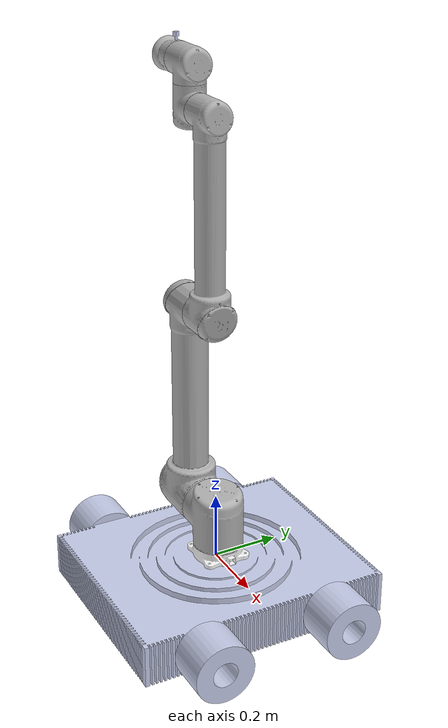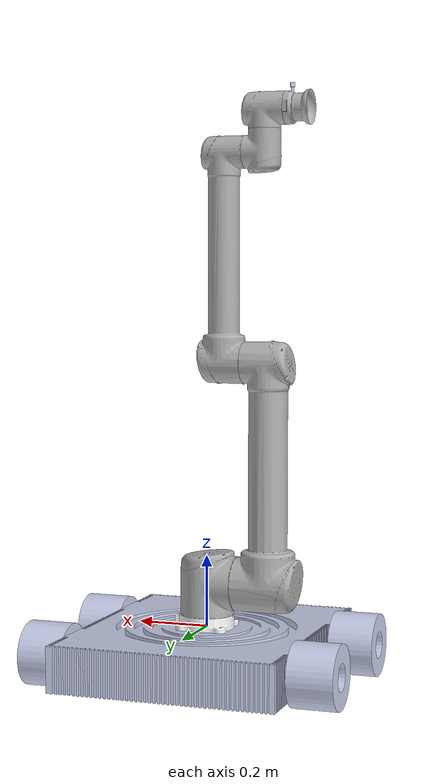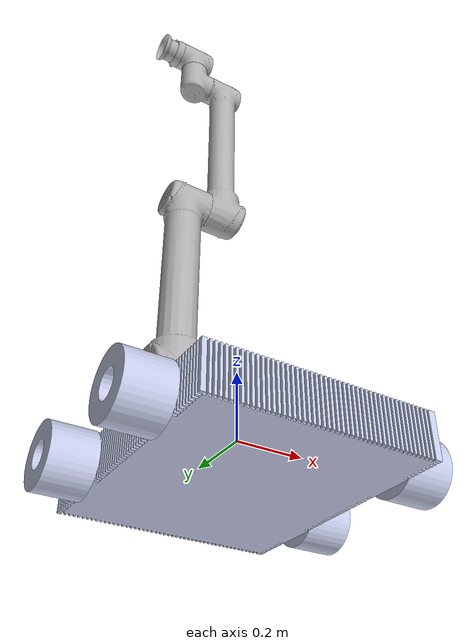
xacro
<?xml version="1.0" encoding="utf-8"?>
<robot
  name="hand_e" xmlns:xacro="http://ros.org/wiki/xacro">

  <!-- Colors -->
  <xacro:macro name="body_color">
    <visual>
    <material>
        <ambient>0.792156862745098 0.819607843137255 0.933333333333333 1</ambient>
        <diffuse>0.8 0.558823529411765 0.1 1</diffuse>
        <specular>0.1 0.1 0.1 1</specular>
        <emissive>0 0 0 0</emissive>
    </material>
    </visual>
  </xacro:macro>
  <xacro:macro name="wheel_color">
    <visual>
    <material>
        <ambient>0 0 0 1</ambient>
        <diffuse>0 0 0 1</diffuse>
        <specular>0.1 0.1 0.1 1</specular>
        <emissive>0 0 0 0</emissive>
    </material>
    </visual>
  </xacro:macro>
  <xacro:macro name="arm_color">
    <visual>
    <material>
        <ambient>0.0 0 0.929411764705882 1</ambient>
        <diffuse>0 0 0 1</diffuse>
        <specular>0.1 0.1 0.1 1</specular>
        <emissive>0 0 0 0</emissive>
    </material>
    </visual>
  </xacro:macro>
  <xacro:macro name="gripper_color">
    <visual>
    <material>
        <ambient>0 1 0 1</ambient>
        <diffuse>0 0 0 1</diffuse>
        <specular>0.1 0.1 0.1 1</specular>
        <emissive>0 0 0 0</emissive>
    </material>
    </visual>
  </xacro:macro>
  <!-- Colors -->

  <link name="dummy_link"></link>
  <joint name="dummy_to_base_link=" type="fixed">
    <parent link="dummy_link"/>
     <child link="base_link"/>
  </joint>

  <link
    name="base_link">
    <inertial>
      <origin
        xyz="5.80276310836428E-05 -6.11295497276811E-05 -0.0648336848302014"
        rpy="0 0 0" />
      <mass
        value="52.6386459244813" />
      <inertia
        ixx="2.60615907779186"
        ixy="-1.86719960169964E-07"
        ixz="-4.07373488104584E-06"
        iyy="1.80507200469152"
        iyz="4.29150001997116E-06"
        izz="4.2630437084624" />
    </inertial>
    <visual>
      <origin
        xyz="0 0 0"
        rpy="0 0 0" />
      <geometry>
        <mesh
          filename="package://hand_e/meshes/base_link.STL" />
      </geometry>
      <material
        name="">
        <color
          rgba="0.792156862745098 0.819607843137255 0.933333333333333 1" />
      </material>
    </visual>
    <collision>
      <origin
        xyz="0 0 0"
        rpy="0 0 0" />
      <geometry>
        <mesh
          filename="package://hand_e/meshes/base_link.STL" />
      </geometry>
    </collision>
  </link>
  <link
    name="front_left">
    <inertial>
      <origin
        xyz="-1.38777878078145E-17 5.55111512312578E-17 5.55111512312578E-17"
        rpy="0 0 0" />
      <mass
        value="2.57407399381529" />
      <inertia
        ixx="0.00947976967355967"
        ixy="-2.00803277362391E-19"
        ixz="5.87902952597009E-20"
        iyy="0.00947976967355967"
        iyz="7.00422786249909E-19"
        izz="0.0120399994394116" />
    </inertial>
    <visual>
      <origin
        xyz="0 0 0"
        rpy="0 0 0" />
      <geometry>
        <mesh
          filename="package://hand_e/meshes/front_left.STL" />
      </geometry>
      <material
        name="">
        <color
          rgba="0.792156862745098 0.819607843137255 0.933333333333333 1" />
      </material>
    </visual>
    <collision>
      <origin
        xyz="0 0 0"
        rpy="0 0 0" />
      <geometry>
        <mesh
          filename="package://hand_e/meshes/front_left.STL" />
      </geometry>
    </collision>
  </link>
  <joint
    name="front_left_joint"
    type="continuous">
    <origin
      xyz="0.380999999999999 -0.203121668505498 -0.0635000000000014"
      rpy="0 1.5707963267949 0" />
    <parent
      link="base_link" />
    <child
      link="front_left" />
    <axis
      xyz="0 0 1" />
    <limit
      effort="100"
      velocity="100" />
    <dynamics
      friction="2" />
    <description>leftJoint</description>
  </joint>
  <link
    name="rear_left">
    <inertial>
      <origin
        xyz="0 -2.77555756156289E-17 0"
        rpy="0 0 0" />
      <mass
        value="2.57407399381529" />
      <inertia
        ixx="0.00947976967355967"
        ixy="7.28360102040024E-22"
        ixz="2.59581749825336E-22"
        iyy="0.00947976967355967"
        iyz="-6.2335073044409E-20"
        izz="0.0120399994394116" />
    </inertial>
    <visual>
      <origin
        xyz="0 0 0"
        rpy="0 0 0" />
      <geometry>
        <mesh
          filename="package://hand_e/meshes/rear_left.STL" />
      </geometry>
      <material
        name="">
        <color
          rgba="0.792156862745098 0.819607843137255 0.933333333333333 1" />
      </material>
    </visual>
    <collision>
      <origin
        xyz="0 0 0"
        rpy="0 0 0" />
      <geometry>
        <mesh
          filename="package://hand_e/meshes/rear_left.STL" />
      </geometry>
    </collision>
  </link>
  <joint
    name="rear_left_joint"
    type="continuous">
    <origin
      xyz="0.380999999999999 0.203308839419647 -0.0635"
      rpy="0 1.5707963267949 0" />
    <parent
      link="base_link" />
    <child
      link="rear_left" />
    <axis
      xyz="0 0 1" />
    <limit
      effort="100"
      velocity="100" />
    <dynamics
      friction="2" />
  </joint>
  <link
    name="front_right">
    <inertial>
      <origin
        xyz="0 0 -5.55111512312578E-17"
        rpy="0 0 0" />
      <mass
        value="2.57407399381529" />
      <inertia
        ixx="0.00947976967355968"
        ixy="2.83276051993413E-19"
        ixz="1.42649221499535E-32"
        iyy="0.00947976967355968"
        iyz="-4.00872542516456E-32"
        izz="0.0120399994394116" />
    </inertial>
    <visual>
      <origin
        xyz="0 0 0"
        rpy="0 0 0" />
      <geometry>
        <mesh
          filename="package://hand_e/meshes/front_right.STL" />
      </geometry>
      <material
        name="">
        <color
          rgba="0.792156862745098 0.819607843137255 0.933333333333333 1" />
      </material>
    </visual>
    <collision>
      <origin
        xyz="0 0 0"
        rpy="0 0 0" />
      <geometry>
        <mesh
          filename="package://hand_e/meshes/front_right.STL" />
      </geometry>
    </collision>
  </link>
  <joint
    name="front_right_joint"
    type="continuous">
    <origin
      xyz="-0.381 -0.203121668505497 -0.0635"
      rpy="3.14159265358979 -1.5707963267949 0" />
    <parent
      link="base_link" />
    <child
      link="front_right" />
    <axis
      xyz="0 0 1" />
    <dynamics
      friction="2" />
    <description>rightJoint</description>
  </joint>
  <link
    name="rear_right">
    <inertial>
      <origin
        xyz="0 2.77555756156289E-17 -5.55111512312578E-17"
        rpy="0 0 0" />
      <mass
        value="2.57407399381529" />
      <inertia
        ixx="0.00947976967355968"
        ixy="3.33476871334018E-19"
        ixz="3.06486896423945E-32"
        iyy="0.00947976967355968"
        iyz="-3.21321069290309E-32"
        izz="0.0120399994394116" />
    </inertial>
    <visual>
      <origin
        xyz="0 0 0"
        rpy="0 0 0" />
      <geometry>
        <mesh
          filename="package://hand_e/meshes/rear_right.STL" />
      </geometry>
      <material
        name="">
        <color
          rgba="0.792156862745098 0.819607843137255 0.933333333333333 1" />
      </material>
    </visual>
    <collision>
      <origin
        xyz="0 0 0"
        rpy="0 0 0" />
      <geometry>
        <mesh
          filename="package://hand_e/meshes/rear_right.STL" />
      </geometry>
    </collision>
  </link>
  <joint
    name="rear_right_joint"
    type="continuous">
    <origin
      xyz="-0.381 0.203308839419645 -0.0635"
      rpy="3.14159265358979 -1.5707963267949 0" />
    <parent
      link="base_link" />
    <child
      link="rear_right" />
    <axis
      xyz="0 0 1" />
    <limit
      effort="100"
      velocity="100" />
    <dynamics
      friction="2" />
  </joint>
  <link
    name="base">
    <inertial>
      <origin
        xyz="0.000468809221648677 7.22487927756407E-06 0.0184342922644863"
        rpy="0 0 0" />
      <mass
        value="0.723083511474943" />
      <inertia
        ixx="0.00116917959377857"
        ixy="-3.75879736012242E-08"
        ixz="-3.04764040502731E-07"
        iyy="0.00119721400625644"
        iyz="8.31308767977868E-08"
        izz="0.00219015492157671" />
    </inertial>
    <visual>
      <origin
        xyz="0 0 0"
        rpy="0 0 0" />
      <geometry>
        <mesh
          filename="package://hand_e/meshes/base.STL" />
      </geometry>
      <material
        name="">
        <color
          rgba="1 1 1 1" />
      </material>
    </visual>
    <collision>
      <origin
        xyz="0 0 0"
        rpy="0 0 0" />
      <geometry>
        <mesh
          filename="package://hand_e/meshes/base.STL" />
      </geometry>
    </collision>
  </link>
  <joint
    name="base_joint"
    type="fixed">
    <origin
      xyz="-0.00595281220058339 0.0110605867213414 0"
      rpy="0 0 0" />
    <parent
      link="base_link" />
    <child
      link="base" />
    <axis
      xyz="0 0 0" />
  </joint>
  <link
    name="base_connect">
    <inertial>
      <origin
        xyz="-0.0116180919174927 1.38467447423872E-06 0.116489279970554"
        rpy="0 0 0" />
      <mass
        value="0.313514079524471" />
      <inertia
        ixx="0.00109341088249656"
        ixy="9.00039257151338E-08"
        ixz="8.76480121568793E-05"
        iyy="0.00117090750291461"
        iyz="6.76857903934236E-09"
        izz="0.00103229346928198" />
    </inertial>
    <visual>
      <origin
        xyz="0 0 0"
        rpy="0 0 0" />
      <geometry>
        <mesh
          filename="package://hand_e/meshes/base_connect.STL" />
      </geometry>
      <material
        name="">
        <color
          rgba="0.698039215686274 0.698039215686274 0.698039215686274 1" />
      </material>
    </visual>
    <collision>
      <origin
        xyz="0 0 0"
        rpy="0 0 0" />
      <geometry>
        <mesh
          filename="package://hand_e/meshes/base_connect.STL" />
      </geometry>
    </collision>
  </link>
  <joint
    name="base_connect_joint"
    type="continuous">
    <origin
      xyz="0 0 0"
      rpy="0 0 0" />
    <parent
      link="base" />
    <child
      link="base_connect" />
    <axis
      xyz="0 0 1" />
  </joint>
  <link
    name="arm1_lower">
    <inertial>
      <origin
        xyz="-0.25096150116301 2.50635946441938E-06 0.0841410933131611"
        rpy="0 0 0" />
      <mass
        value="0.887819204634431" />
      <inertia
        ixx="0.002059497821703"
        ixy="2.40499771631106E-06"
        ixz="0.000425170003573277"
        iyy="0.0463631650483672"
        iyz="-3.14589506399883E-07"
        izz="0.0461700726342757" />
    </inertial>
    <visual>
      <origin
        xyz="0 0 0"
        rpy="0 0 0" />
      <geometry>
        <mesh
          filename="package://hand_e/meshes/arm1_lower.STL" />
      </geometry>
      <material
        name="">
        <color
          rgba="0.698039215686274 0.698039215686274 0.698039215686274 1" />
      </material>
    </visual>
    <collision>
      <origin
        xyz="0 0 0"
        rpy="0 0 0" />
      <geometry>
        <mesh
          filename="package://hand_e/meshes/arm1_lower.STL" />
      </geometry>
    </collision>
  </link>
  <joint
    name="arm1_lower_joint"
    type="continuous">
    <origin
      xyz="-0.0861999999999996 0 0.128"
      rpy="3.14159265358979 1.5707963267949 0" />
    <parent
      link="base_connect" />
    <child
      link="arm1_lower" />
    <axis
      xyz="0 0 -1" />
  </joint>
  <link
    name="arm2_lower">
    <inertial>
      <origin
        xyz="0.256850693950992 -3.24959102954159E-06 0.00322491337902426"
        rpy="0 0 0" />
      <mass
        value="0.473747284195782" />
      <inertia
        ixx="0.000614889071011718"
        ixy="-2.90846533367841E-07"
        ixz="-9.68472196964982E-06"
        iyy="0.020329998137372"
        iyz="-5.61384249943774E-08"
        izz="0.0202932042063235" />
    </inertial>
    <visual>
      <origin
        xyz="0 0 0"
        rpy="0 0 0" />
      <geometry>
        <mesh
          filename="package://hand_e/meshes/arm2_lower.STL" />
      </geometry>
      <material
        name="">
        <color
          rgba="0.698039215686274 0.698039215686274 0.698039215686274 1" />
      </material>
    </visual>
    <collision>
      <origin
        xyz="0 0 0"
        rpy="0 0 0" />
      <geometry>
        <mesh
          filename="package://hand_e/meshes/arm2_lower.STL" />
      </geometry>
    </collision>
  </link>
  <joint
    name="arm2_lower_joint"
    type="continuous">
    <origin
      xyz="-0.6129 0 -0.0380092894600003"
      rpy="0 0 3.14159265358979" />
    <parent
      link="arm1_lower" />
    <child
      link="arm2_lower" />
    <axis
      xyz="0 0 -1" />
  </joint>
  <link
    name="arm2_upper">
    <inertial>
      <origin
        xyz="-0.00970308828175481 -8.57851149071477E-06 0.0466151734317388"
        rpy="0 0 0" />
      <mass
        value="0.0742764446430328" />
      <inertia
        ixx="9.01020498619509E-05"
        ixy="5.0021545575801E-09"
        ixz="9.24585413820232E-06"
        iyy="0.000113727147236287"
        iyz="-1.31115213645778E-08"
        izz="0.000105196921793077" />
    </inertial>
    <visual>
      <origin
        xyz="0 0 0"
        rpy="0 0 0" />
      <geometry>
        <mesh
          filename="package://hand_e/meshes/arm2_upper.STL" />
      </geometry>
      <material
        name="">
        <color
          rgba="0.698039215686274 0.698039215686274 0.698039215686274 1" />
      </material>
    </visual>
    <collision>
      <origin
        xyz="0 0 0"
        rpy="0 0 0" />
      <geometry>
        <mesh
          filename="package://hand_e/meshes/arm2_upper.STL" />
      </geometry>
    </collision>
  </link>
  <joint
    name="arm2_upper_joint"
    type="continuous">
    <origin
      xyz="0.571600428429073 0 0.0615000000000024"
      rpy="0 0 -3.14159265358979" />
    <parent
      link="arm2_lower" />
    <child
      link="arm2_upper" />
    <axis
      xyz="0 0 1" />
  </joint>
  <link
    name="vaccum_base">
    <inertial>
      <origin
        xyz="-0.00970309094636546 -8.59057528028451E-06 0.0464151792948282"
        rpy="0 0 0" />
      <mass
        value="0.0742764203687969" />
      <inertia
        ixx="9.01020139421992E-05"
        ixy="5.01424741512049E-09"
        ixz="9.24584614646745E-06"
        iyy="0.000113727142465638"
        iyz="-1.312749073982E-08"
        izz="0.000105196889441442" />
    </inertial>
    <visual>
      <origin
        xyz="0 0 0"
        rpy="0 0 0" />
      <geometry>
        <mesh
          filename="package://hand_e/meshes/vaccum_base.STL" />
      </geometry>
      <material
        name="">
        <color
          rgba="0.698039215686274 0.698039215686274 0.698039215686274 1" />
      </material>
    </visual>
    <collision>
      <origin
        xyz="0 0 0"
        rpy="0 0 0" />
      <geometry>
        <mesh
          filename="package://hand_e/meshes/vaccum_base.STL" />
      </geometry>
    </collision>
  </link>
  <joint
    name="vaccum_base_joint"
    type="continuous">
    <origin
      xyz="-0.0617000000000023 0 0.0541999999999999"
      rpy="3.14159265358979 1.5707963267949 0" />
    <parent
      link="arm2_upper" />
    <child
      link="vaccum_base" />
    <axis
      xyz="0 0 1" />
  </joint>
  <link
    name="gripper">
    <inertial>
      <origin
        xyz="-0.0847516575364416 0.000313181833712036 -0.000630023335160601"
        rpy="0 0 0" />
      <mass
        value="0.0268694084591444" />
      <inertia
        ixx="2.31730256637713E-05"
        ixy="-4.68378057497354E-08"
        ixz="-5.25186102354395E-08"
        iyy="1.26795760179578E-05"
        iyz="-8.0917605727407E-09"
        izz="1.371781905329E-05" />
    </inertial>
    <visual>
      <origin
        xyz="0 0 0"
        rpy="0 0 0" />
      <geometry>
        <mesh
          filename="package://hand_e/meshes/vaccum_base_1.STL" />
      </geometry>
      <material
        name="">
        <color
          rgba="0.698039215686274 0.698039215686274 0.698039215686274 1" />
      </material>
    </visual>
    <collision>
      <origin
        xyz="0 0 0"
        rpy="0 0 0" />
      <geometry>
        <mesh
          filename="package://hand_e/meshes/vaccum_base_1.STL" />
      </geometry>
    </collision>
  </link>
  <joint
    name="gripper_joint"
    type="revolute">
    <origin
      xyz="0 0 0.054"
      rpy="0 0 0" />
    <parent
      link="vaccum_base" />
    <child
      link="gripper" />
    <axis
      xyz="-1 0 0" />
    <limit
    lower="-3.14"
    upper="3.14"
    effort="1000"
    velocity="1000" />
  </joint>
  <link
    name="camera">
    <inertial>
      <origin
        xyz="1.94289029309402E-16 4.63171168085807E-15 0.003447418640663"
        rpy="0 0 0" />
      <mass
        value="0.00265523655302715" />
      <inertia
        ixx="1.41037231479302E-07"
        ixy="-8.57519229309676E-25"
        ixz="2.702730134894E-22"
        iyy="1.41037231479302E-07"
        iyz="-2.32326860696384E-22"
        izz="5.96790818794165E-08" />
    </inertial>
    <visual>
      <origin
        xyz="0 0 0"
        rpy="0 0 0" />
      <geometry>
        <mesh
          filename="package://hand_e/meshes/camera.STL" />
      </geometry>
      <material
        name="">
        <color
          rgba="0.792156862745098 0.819607843137255 0.933333333333333 1" />
      </material>
    </visual>
    <collision>
      <origin
        xyz="0 0 0"
        rpy="0 0 0" />
      <geometry>
        <mesh
          filename="package://hand_e/meshes/camera.STL" />
      </geometry>
    </collision>
  </link>
  <joint
    name="camera_joint"
    type="revolute">
    <origin
      xyz="-0.078050000000011 0 0.0536999999999996"
      rpy="0 0 0" />
    <parent
      link="gripper" />
    <child
      link="camera" />
    <axis
      xyz="0 0 -1" />
    <limit
    lower="-3.14"
    upper="3.14"
    effort="1000"
    velocity="1000" />
  </joint>

  <!-- Assigning Colors -->

  <gazebo reference="base_link">
      <xacro:body_color />
  </gazebo>
  <gazebo reference="base">
      <xacro:body_color />
  </gazebo>
  <gazebo reference="base_connect">
      <xacro:body_color />
  </gazebo>
  <gazebo reference="front_right">
      <xacro:wheel_color />
  </gazebo>
  <gazebo reference="front_left">
      <xacro:wheel_color />
  </gazebo>
  <gazebo reference="rear_left">
      <xacro:wheel_color />
  </gazebo>
  <gazebo reference="rear_right">
      <xacro:wheel_color />
  </gazebo>
  <gazebo reference="arm1_lower">
      <xacro:arm_color />
  </gazebo>
  <gazebo reference="arm2_lower">
      <xacro:arm_color />
  </gazebo>
  <gazebo reference="arm2_upper">
      <xacro:arm_color />
  </gazebo>
  <gazebo reference="vaccum_base">
      <xacro:body_color />
  </gazebo>
  <gazebo reference="gripper">
      <xacro:gripper_color />
  </gazebo>
  <gazebo reference="camera">
      <xacro:wheel_color />
  </gazebo>
  <ros2_control name="GazeboSystem" type="system">
    <hardware>
        <plugin>gazebo_ros2_control/GazeboSystem</plugin>
    </hardware>

    <!-- Velocity Controllers -->

    <joint name="base_connect_joint">
        <command_interface name="velocity">
            <param name="min">-1000.0</param>
            <param name="max">1000.0</param>
        </command_interface>
        <state_interface name="position"/>
        <state_interface name="velocity"/>
    </joint>

    <joint name="arm1_lower_joint">
        <command_interface name="velocity">
            <param name="min">-1000.0</param>
            <param name="max">1000.0</param>
        </command_interface>
        <state_interface name="position"/>
        <state_interface name="velocity"/>
    </joint>

    <joint name="arm2_lower_joint">
        <command_interface name="velocity">
            <param name="min">-1000.0</param>
            <param name="max">1000.0</param>
        </command_interface>
        <state_interface name="position"/>
        <state_interface name="velocity"/>
    </joint>

    <joint name="arm2_upper_joint">
        <command_interface name="velocity">
            <param name="min">-1000.0</param>
            <param name="max">1000.0</param>
        </command_interface>
        <state_interface name="position"/>
        <state_interface name="velocity"/>
    </joint>

    <joint name="vaccum_base_joint">
        <command_interface name="velocity">
            <param name="min">-1000.0</param>
            <param name="max">1000.0</param>
        </command_interface>
        <state_interface name="position"/>
        <state_interface name="velocity"/>
    </joint>

    <joint name="gripper_joint">
        <command_interface name="velocity">
            <param name="min">-1000.0</param>
            <param name="max">1000.0</param>
        </command_interface>
        <state_interface name="position"/>
        <state_interface name="velocity"/>
    </joint>

    <joint name="front_right_joint">
        <command_interface name="velocity">
            <param name="min">-1000.0</param>
            <param name="max">1000.0</param>
        </command_interface>
        <state_interface name="position"/>
        <state_interface name="velocity"/>
    </joint>

    <joint name="front_left_joint">
        <command_interface name="velocity">
            <param name="min">-1000.0</param>
            <param name="max">1000.0</param>
        </command_interface>
        <state_interface name="position"/>
        <state_interface name="velocity"/>
    </joint>

    <joint name="rear_left_joint">
        <command_interface name="velocity">
            <param name="min">-1000.0</param>
            <param name="max">1000.0</param>
        </command_interface>
        <state_interface name="position"/>
        <state_interface name="velocity"/>
    </joint>

    <joint name="rear_right_joint">
        <command_interface name="velocity">
            <param name="min">-1000.0</param>
            <param name="max">1000.0</param>
        </command_interface>
        <state_interface name="position"/>
        <state_interface name="velocity"/>
    </joint>

    <!-- Position Controller -->

    <joint name="base_connect_joint">
        <command_interface name="position">
            <param name="min">-3.14</param>
            <param name="max">3.14</param>
        </command_interface>
        <state_interface name="position"/>
        <state_interface name="velocity"/>
    </joint>

    <joint name="arm1_lower_joint">
        <command_interface name="position">
            <param name="min">-3.14</param>
            <param name="max">3.14</param>
        </command_interface>
        <state_interface name="position"/>
        <state_interface name="velocity"/>
    </joint>

    <joint name="arm2_lower_joint">
        <command_interface name="position">
            <param name="min">-3.14</param>
            <param name="max">3.14</param>
        </command_interface>
        <state_interface name="position"/>
        <state_interface name="velocity"/>
    </joint>

    <joint name="arm2_upper_joint">
        <command_interface name="position">
            <param name="min">-3.14</param>
            <param name="max">3.14</param>
        </command_interface>
        <state_interface name="position"/>
        <state_interface name="velocity"/>
    </joint>

    <joint name="vaccum_base_joint">
        <command_interface name="position">
            <param name="min">-3.14</param>
            <param name="max">3.14</param>
        </command_interface>
        <state_interface name="position"/>
        <state_interface name="velocity"/>
    </joint>

    <joint name="gripper_joint">
        <command_interface name="position">
            <param name="min">-3.14</param>
            <param name="max">3.14</param>
        </command_interface>
        <state_interface name="position"/>
        <state_interface name="velocity"/>
    </joint>

  </ros2_control>

  <gazebo>
      <plugin filename="libgazebo_ros2_control.so" name="gazebo_ros2_control">
          <parameters>$(find hand_e)/config/control.yaml</parameters>
      </plugin>
  </gazebo>

  <gazebo>
    <plugin name='vacuum_gripper' filename='libgazebo_ros_vacuum_gripper.so'>
      <ros>
        <namespace>/hand_e/gripper</namespace>
        <remapping>switch:=hand_e_switch</remapping>
        <remapping>grasping:=hand_e_grasping</remapping>
      </ros>
      <link_name>gripper</link_name>
      <max_distance>0.5</max_distance>
      <fixed>ground_plane</fixed>
      <fixed>wall</fixed>
      <fixed>Ground_Pallete</fixed>
      <maxForce>1000.0</maxForce>
    </plugin>
  </gazebo>

  <gazebo>
    <plugin name='vacuum_gripper1' filename='libgazebo_ros_vacuum_gripper.so'>
      <ros>
        <namespace>/hand_e/gripper</namespace>
        <remapping>switch:=hand_e_switch1</remapping>
        <remapping>grasping:=hand_e_grasping1</remapping>
      </ros>
      <link_name>camera</link_name>
      <max_distance>0.5</max_distance>
      <fixed>ground_plane</fixed>
      <fixed>wall</fixed>
      <fixed>Ground_Pallete</fixed>
      <maxForce>1000.0</maxForce>
    </plugin>
  </gazebo>
<!-- Differentiation Drive Controllers -->

  <gazebo>
    <plugin filename="libodometry_plugin.so" name="odometry_plugin">
      Name of the link for which the odometry is required
      <frame>front_left</frame>
      Any arbitray name for the world frame
      <world_frame>fixed_world</world_frame>
    </plugin>
  </gazebo>
</robot>
